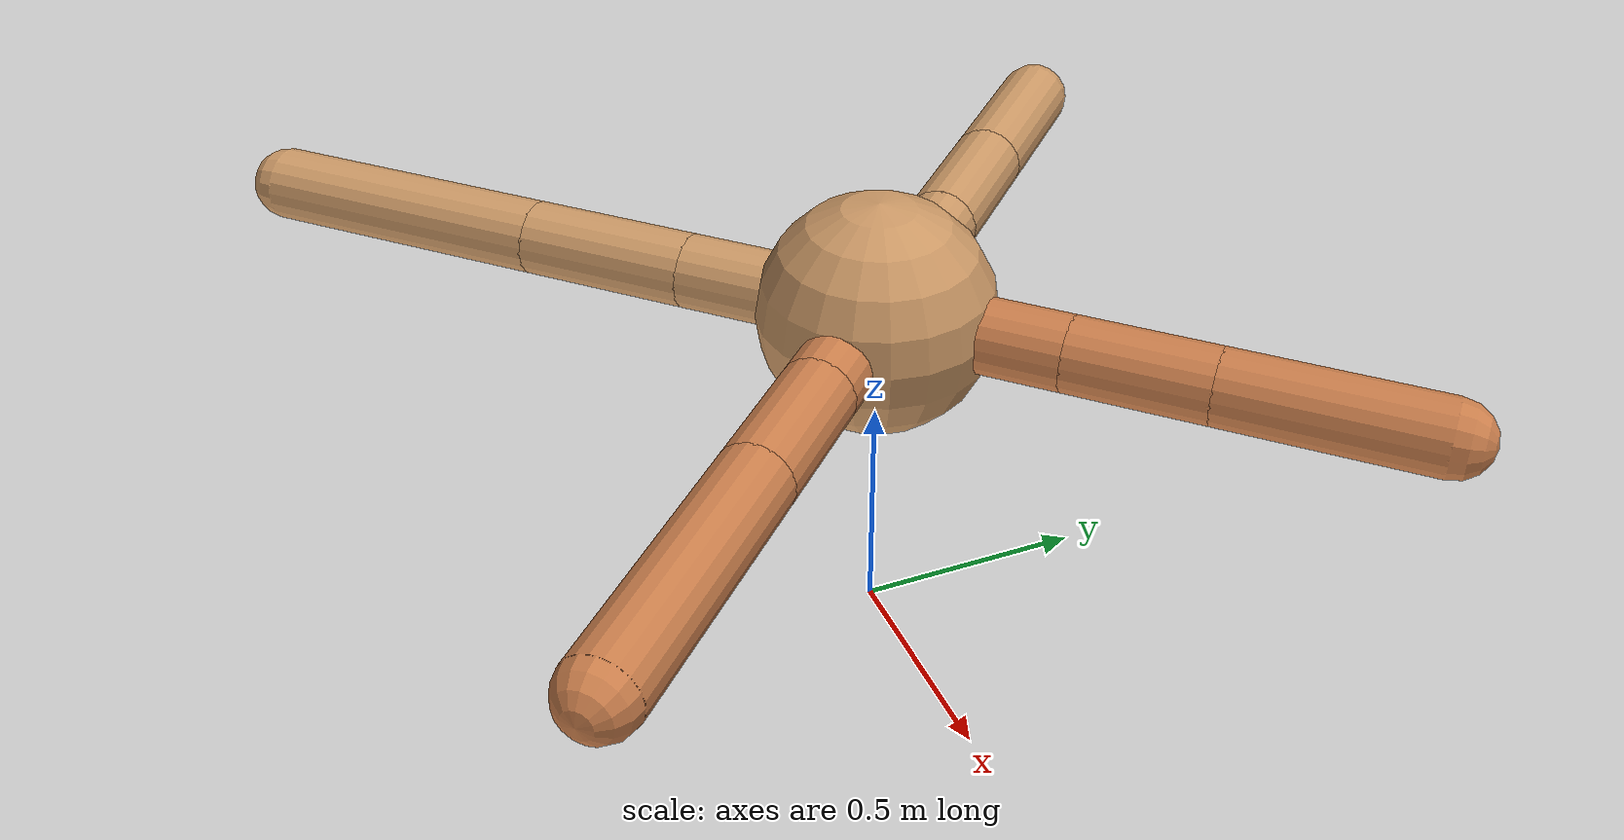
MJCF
<mujoco model="ant">
  <compiler angle="degree" coordinate="local" inertiafromgeom="true" />
  <option integrator="RK4" timestep="0.01" />
  <custom>
    <numeric data="0.0 0.0 0.55 1.0 0.0 0.0 0.0 0.0 1.0 0.0 -1.0 0.0 -1.0 0.0 1.0" name="init_qpos" />
  </custom>
  <default>
    <joint armature="1" damping="1" limited="true" />
    <geom conaffinity="0" condim="3" density="5.0" friction="1.5 0.1 0.1" margin="0.01" rgba="0.8 0.6 0.4 1" />
  </default>
  <worldbody>
    <body name="torso" pos="0 0 0.75">
      <geom name="torso_geom" pos="0 0 0" size="0.25" type="sphere" />

      <body name="front_left_leg" pos="0 0 0">
        <geom fromto="0.0 0.0 0.0 0.28493296714335975 0.28493296714335975 0.0" name="aux_1_geom" size="0.08" type="capsule" rgba=".8 .5 .3 1" />
        <body name="aux_1" pos="0.28493296714335975 0.28493296714335975 0.0">
          <joint axis="0 0 1" name="hip_1" pos="0.0 0.0 0.0" range="-40 40" type="hinge" />
          <geom fromto="0.0 0.0 0.0 0.20856885520495153 0.20856885520495153 0.0" name="left_leg_geom" size="0.08" type="capsule" rgba=".8 .5 .3 1" />
          <body pos="0.20856885520495153 0.20856885520495153 0.0" name="front_left_foot">
            <joint axis="-1 1 0" name="ankle_1" pos="0.0 0.0 0.0" range="30 100" type="hinge" />
            <geom fromto="0.0 0.0 0.0 0.3110444246067409 0.3110444246067409 0.0" name="left_ankle_geom" size="0.08" type="capsule" rgba=".8 .5 .3 1" />
          </body>
        </body>
      </body>
      <body name="front_right_leg" pos="0 0 0">
        <geom fromto="0.0 0.0 0.0 -0.27887211733684386 0.27887211733684386 0.0" name="aux_2_geom" size="0.08" type="capsule" />
        <body name="aux_2" pos="-0.27887211733684386 0.27887211733684386 0.0">
          <joint axis="0 0 1" name="hip_2" pos="0.0 0.0 0.0" range="-40 40" type="hinge" />
          <geom fromto="0.0 0.0 0.0 -0.22538034909520435 0.22538034909520435 0.0" name="right_leg_geom" size="0.08" type="capsule" />
          <body pos="-0.22538034909520435 0.22538034909520435 0.0" name="front_right_foot">
            <joint axis="1 1 0" name="ankle_2" pos="0.0 0.0 0.0" range="-100 -30" type="hinge" />
            <geom fromto="0.0 0.0 0.0 -0.26381380321333175 0.26381380321333175 0.0" name="right_ankle_geom" size="0.08" type="capsule" />
          </body>
        </body>
      </body>
      <body name="left_back_leg" pos="0 0 0">
        <geom fromto="0.0 0.0 0.0 -0.2988763062421593 -0.2988763062421593 0.0" name="aux_3_geom" size="0.08" type="capsule" />
        <body name="aux_3" pos="-0.2988763062421593 -0.2988763062421593 0.0">
          <joint axis="0 0 1" name="hip_3" pos="0.0 0.0 0.0" range="-40 40" type="hinge" />
          <geom fromto="0.0 0.0 0.0 -0.25958133100295955 -0.25958133100295955 0.0" name="back_leg_geom" size="0.08" type="capsule" />
          <body pos="-0.25958133100295955 -0.25958133100295955 0.0" name="left_back_foot">
            <joint axis="-1 1 0" name="ankle_3" pos="0.0 0.0 0.0" range="-100 -30" type="hinge" />
            <geom fromto="0.0 0.0 0.0 -0.454198398977278 -0.454198398977278 0.0" name="third_ankle_geom" size="0.08" type="capsule" />
          </body>
        </body>
      </body>
      <body name="right_back_leg" pos="0 0 0">
        <geom fromto="0.0 0.0 0.0 0.22385705995427713 -0.22385705995427713 0.0" name="aux_4_geom" size="0.08" type="capsule" rgba=".8 .5 .3 1" />
        <body name="aux_4" pos="0.22385705995427713 -0.22385705995427713 0.0">
          <joint axis="0 0 1" name="hip_4" pos="0.0 0.0 0.0" range="-40 40" type="hinge" />
          <geom fromto="0.0 0.0 0.0 0.20628675630384513 -0.20628675630384513 0.0" name="rightback_leg_geom" size="0.08" type="capsule" rgba=".8 .5 .3 1" />
          <body pos="0.20628675630384513 -0.20628675630384513 0.0" name="right_back_foot">
            <joint axis="1 1 0" name="ankle_4" pos="0.0 0.0 0.0" range="30 100" type="hinge" />
            <geom fromto="0.0 0.0 0.0 0.41775497187533417 -0.41775497187533417 0.0" name="fourth_ankle_geom" size="0.08" type="capsule" rgba=".8 .5 .3 1" />
          </body>
        </body>
      </body>
    </body>
  </worldbody>
  <actuator>
    <motor ctrllimited="true" ctrlrange="-1.0 1.0" joint="hip_4" gear="150" />
    <motor ctrllimited="true" ctrlrange="-1.0 1.0" joint="ankle_4" gear="150" />
    <motor ctrllimited="true" ctrlrange="-1.0 1.0" joint="hip_1" gear="150" />
    <motor ctrllimited="true" ctrlrange="-1.0 1.0" joint="ankle_1" gear="150" />
    <motor ctrllimited="true" ctrlrange="-1.0 1.0" joint="hip_2" gear="150" />
    <motor ctrllimited="true" ctrlrange="-1.0 1.0" joint="ankle_2" gear="150" />
    <motor ctrllimited="true" ctrlrange="-1.0 1.0" joint="hip_3" gear="150" />
    <motor ctrllimited="true" ctrlrange="-1.0 1.0" joint="ankle_3" gear="150" />
  </actuator>
</mujoco>
